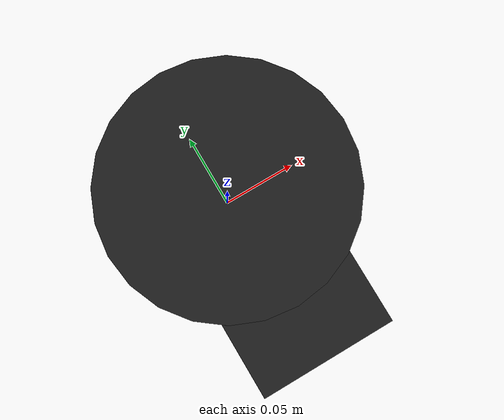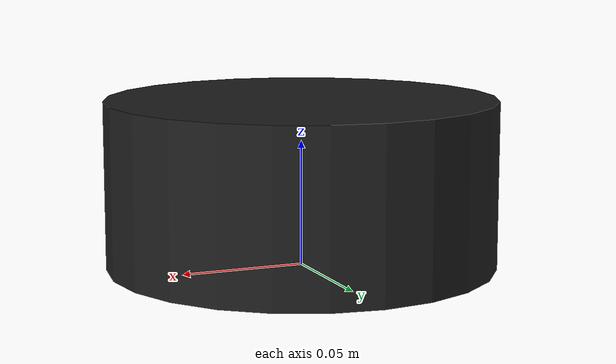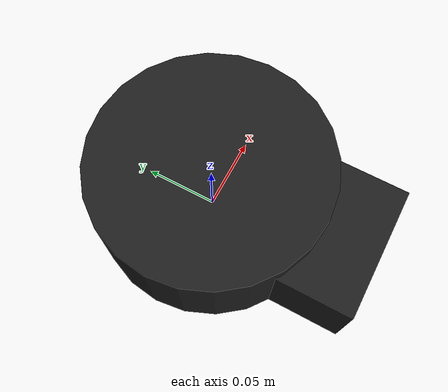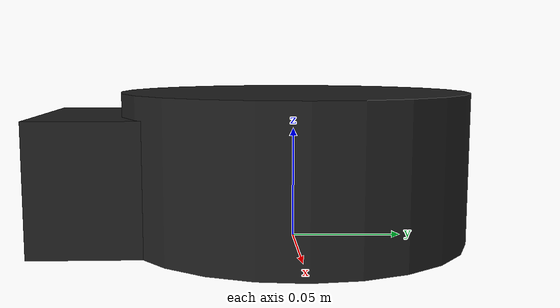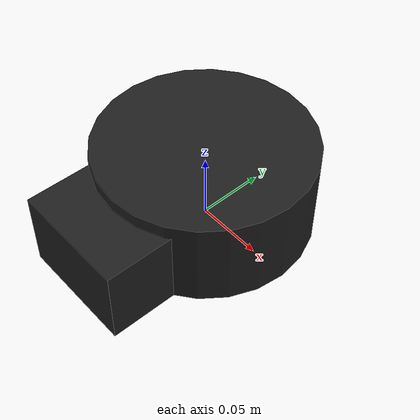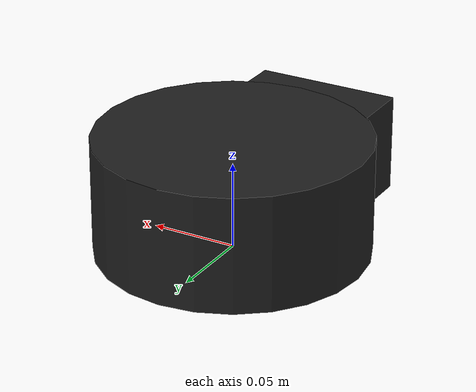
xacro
<?xml version="1.0"?>
<robot xmlns:xacro="http://www.ros.org/wiki/xacro">

  <link name="arm_base_part1">
    <visual>
      <geometry>
        <box size="0.085 0.113 0.057"/>
      </geometry>
      <origin xyz="0 -0.0565 0.0285" rpy="0 0 0"/>
      <material name="black"/>
    </visual>
  </link>

  <link name="arm_base_part2">
    <visual>
      <geometry>
        <cylinder length="0.067" radius="0.078"/>
      </geometry>
      <origin xyz="0 0 0.0335" rpy="0 0 0"/>
      <material name="black"/>
    </visual>
  </link>

  <joint name="arm_base_fixed" type="fixed">
    <parent link="arm_base_part1"/>
    <child link="arm_base_part2"/>
    <origin xyz="0 0 0" rpy="0 0 0"/>
  </joint>
</robot>
